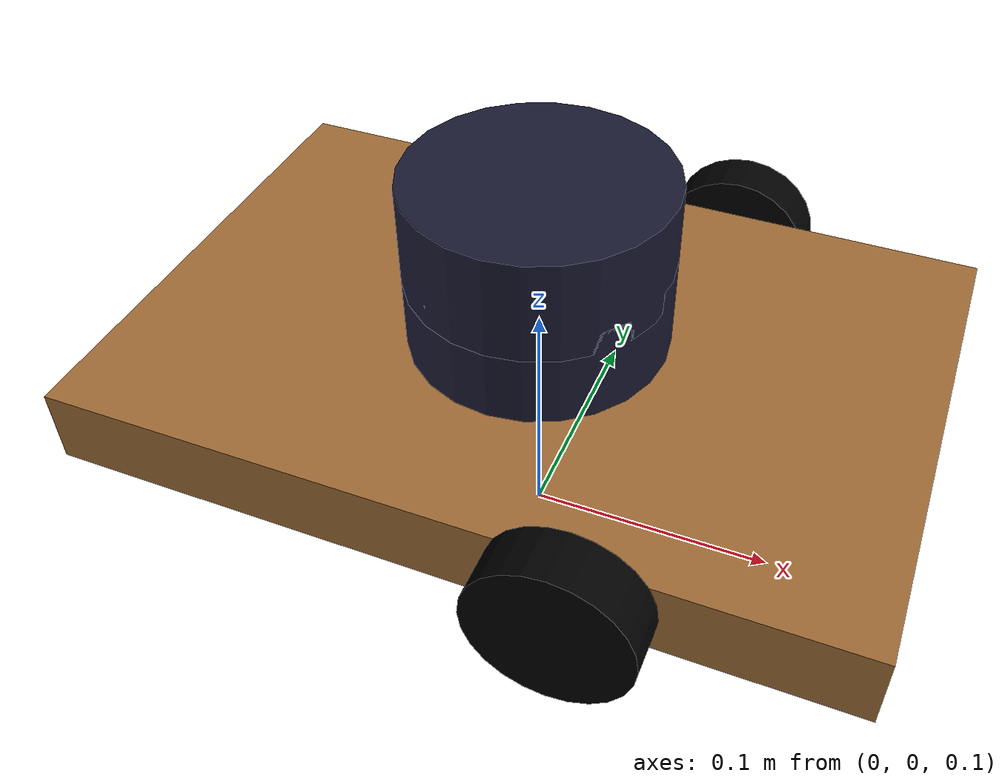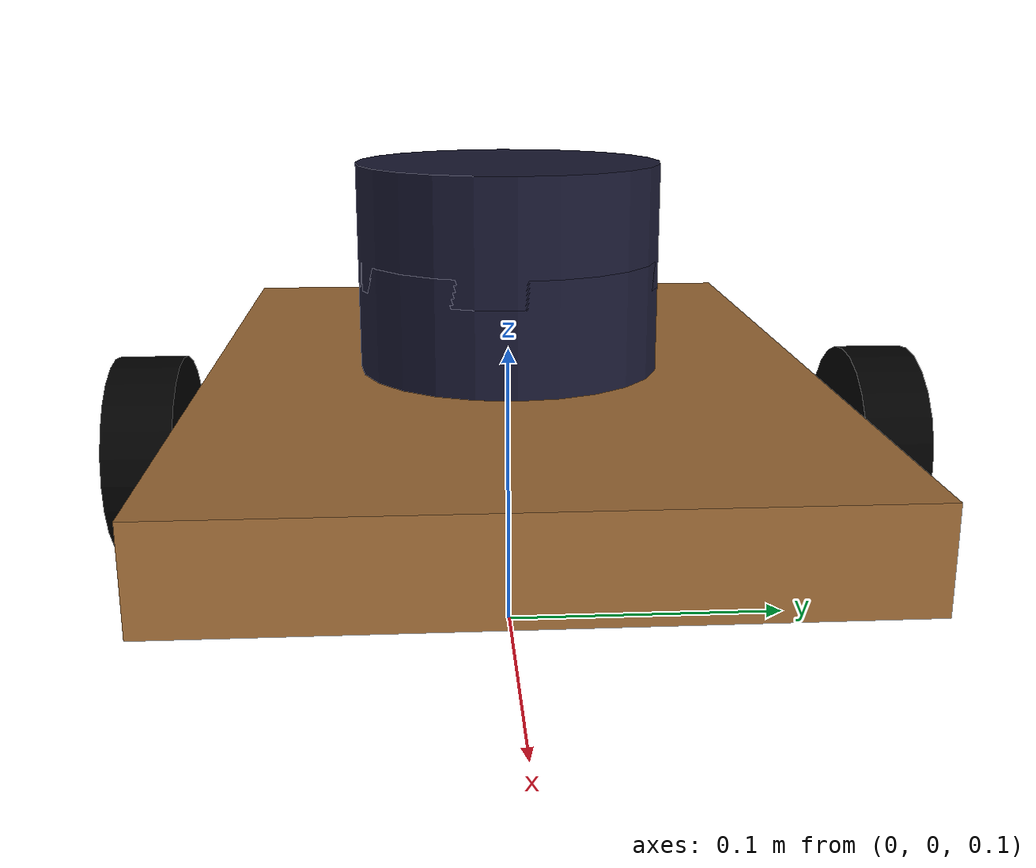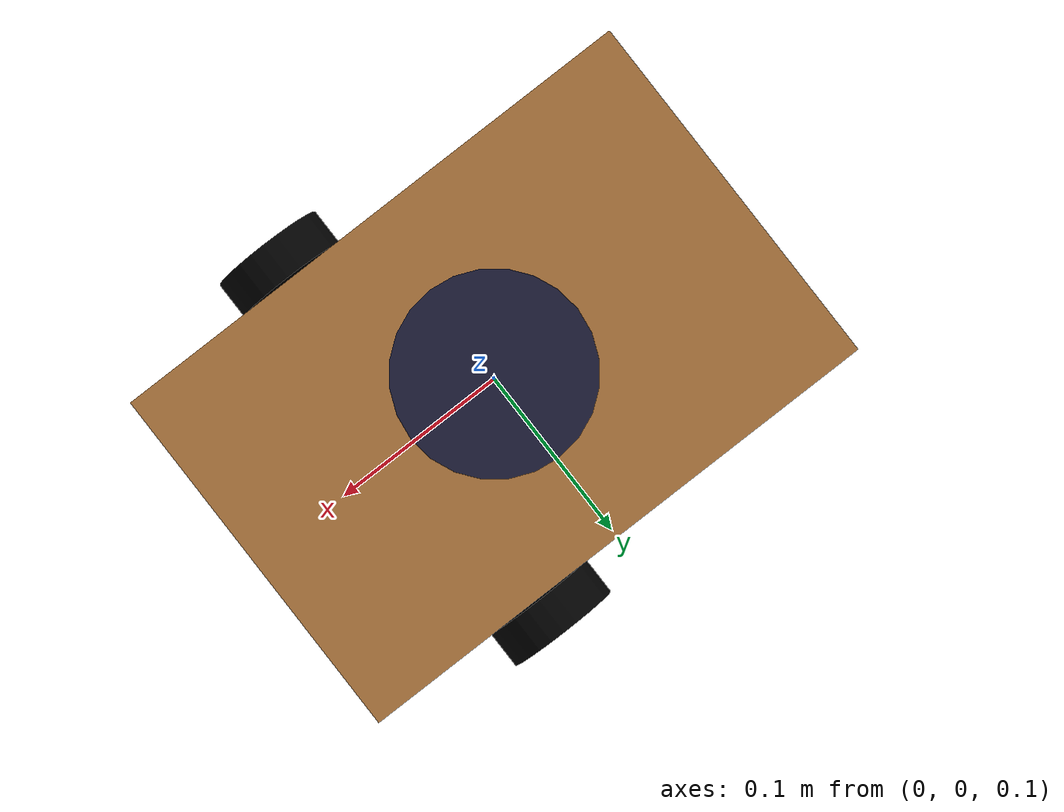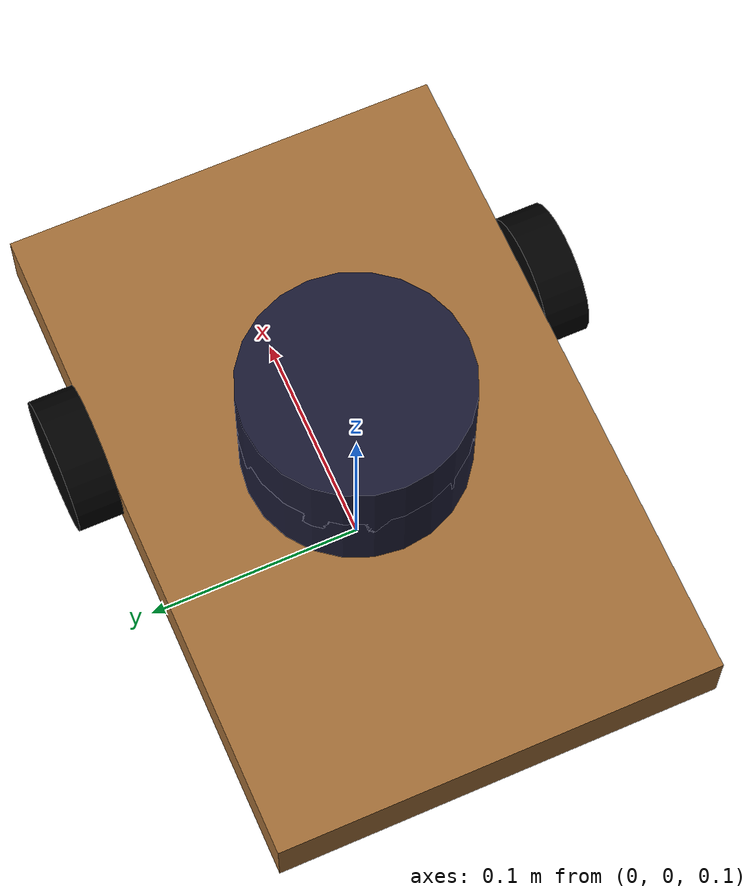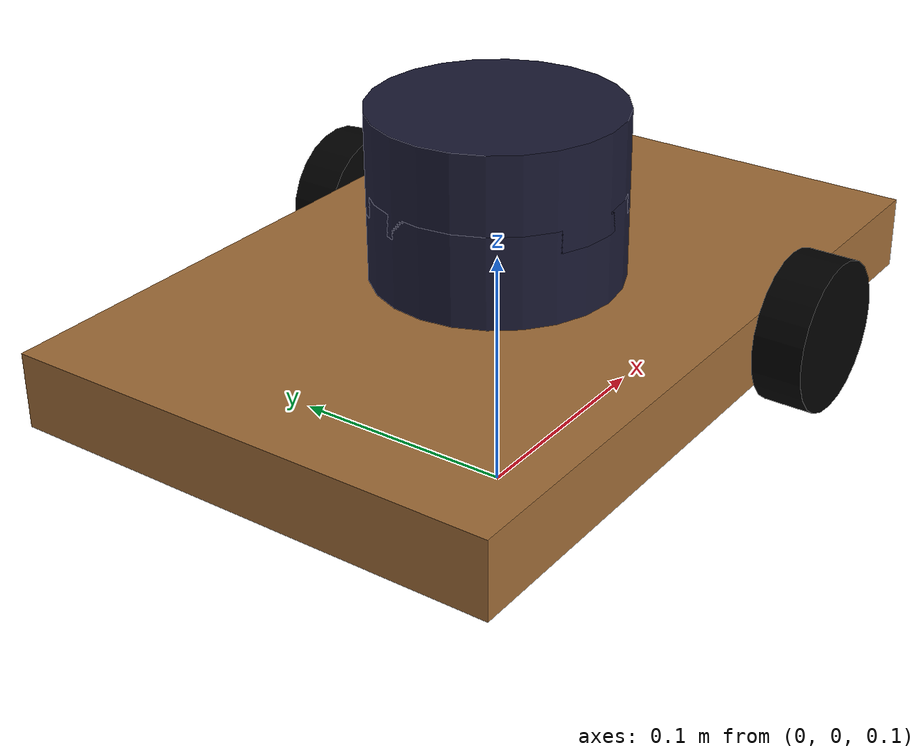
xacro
<?xml version="1.0"?>
<robot name="dd">

  <link name="base_footprint"/>

  <link name="base_link">
    <visual>
      <geometry>
        <box size="0.3 0.2 0.03"/>
      </geometry>
      <material name="avana brown">
	<color rgba="0.6314 0.4275 0.2157 1"/>
      </material>
    </visual>
    <collision>
      <geometry>
        <box size="0.3 0.2 0.03"/>
      </geometry>
    </collision>
    <inertial>
      <mass value="1.0"/>
      <inertia ixx="3.408e-3"
               ixy="0"       iyy="7.575e-3"
               ixz="0"       iyz="0"       izz="1.083e-2"/>
    </inertial>
  </link>

  <joint name="base_joint" type="fixed">
    <parent link="base_footprint"/>
    <child link="base_link" />
    <origin xyz="0 0 0.18" rpy="0 0 0"/>
  </joint>

  <link name="right_wheel">
    <visual>
      <geometry>
        <cylinder length="0.02" radius="0.03"/>
      </geometry>
      <material name="black">
	<color rgba="0 0 0 1"/>
      </material>
    </visual>
    <collision>
      <geometry>
        <cylinder length="0.02" radius="0.03"/>
      </geometry>
    </collision>
    <inertial>
      <mass value="0.1"/>
      <inertia ixx="2.583e-5"
               ixy="0"       iyy="2.583e-5"
               ixz="0"       iyz="0"       izz="7.5e-6"/>
    </inertial>
  </link>

  <joint name="right_wheel_joint" type="continuous">
    <axis xyz="0 0 1"/>
    <parent link="base_link"/>
    <child link="right_wheel"/>
    <origin rpy="-1.5708 0 0" xyz="0.05 -0.11 0"/>
  </joint>

  <link name="left_wheel">
    <visual>
      <geometry>
        <cylinder length="0.02" radius="0.03"/>
      </geometry>
      <material name="black">
	<color rgba="0 0 0 1"/>
      </material>
    </visual>
    <collision>
      <geometry>
        <cylinder length="0.02" radius="0.03"/>
      </geometry>
    </collision>
    <inertial>
      <mass value="0.1"/>
      <inertia ixx="2.583e-5"
               ixy="0"       iyy="2.583e-5"
               ixz="0"       iyz="0"       izz="7.5e-6"/>
    </inertial>
  </link>

  <joint name="left_wheel_joint" type="continuous">
    <axis xyz="0 0 1"/>
    <parent link="base_link"/>
    <child link="left_wheel"/>
    <origin rpy="-1.5708 0 0" xyz="0.05 0.11 0"/>
  </joint>

  <link name="caster_wheel">
    <visual>
      <geometry>
        <sphere radius="0.015"/>
      </geometry>
      <material name="black">
	<color rgba="0 0 0 1"/>
      </material>
    </visual>
    <collision>
      <geometry>
        <sphere radius="0.015"/>
      </geometry>
    </collision>
    <inertial>
      <mass value="0.1"/>
      <inertia ixx="9e-6"
               ixy="0"   iyy="9e-6"
               ixz="0"   iyz="0"   izz="9e-6"/>
    </inertial>
  </link>

  <joint name="caster_wheel_joint" type="fixed">
    <axis xyz="0 1 0"/>
    <parent link="base_link"/>
    <child link="caster_wheel"/>
    <origin rpy="0 0 0" xyz="-0.1 0 -0.015"/>
  </joint>

<gazebo>
  <plugin name="differential_drive_controller" filename="libgazebo_ros_diff_drive.so">
    <commandTopic>cmd_vel</commandTopic>
    <odometryTopic>odom</odometryTopic>
    <odometrySource>1</odometrySource>
    <leftJoint>left_wheel_joint</leftJoint>
    <rightJoint>right_wheel_joint</rightJoint>
    <robotBaseFrame>base_link</robotBaseFrame>
    <wheelSeparation>0.2</wheelSeparation>
    <wheelDiameter>0.06</wheelDiameter>
    <wheelTorque>10</wheelTorque>
    <publishWheelTF>true</publishWheelTF>
    <publishWheelJointState>true</publishWheelJointState>
  </plugin>
</gazebo>

<link name="imu_link">
  <visual>
    <geometry>
      <cylinder length="0.04" radius="0.05"/>
    </geometry>
    <material name="gray">
      <color rgba="0.1 0.1 0.2 1"/>
    </material>
  </visual>
  <collision>
    <geometry>
      <cylinder length="0.04" radius="0.05"/>
    </geometry>
  </collision>
  <inertial>
    <mass value="0.09"/>
    <inertia ixx="3.03e-4"
             ixy="0"       iyy="3.03e-4"
             ixz="0"       iyz="0"       izz="8.3e-5"/>
  </inertial>
</link>

<joint name="imu_joint" type="fixed">
  <axis xyz="0 0 0"/>
  <parent link="base_link"/>
  <child link="imu_link"/>
  <origin rpy="0 0 0" xyz="0 0 0.032"/>
</joint>

<gazebo reference="imu_link">
    <gravity>true</gravity>
    <sensor name="imu_sensor" type="imu">
      <always_on>true</always_on>
      <update_rate>100</update_rate>
      <visualize>true</visualize>
      <topic>__default_topic__</topic>
      <plugin filename="libgazebo_ros_imu_sensor.so" name="imu_plugin">
        <topicName>imu</topicName>
        <bodyName>imu_link</bodyName>
        <updateRateHZ>100.0</updateRateHZ>
        <gaussianNoise>0</gaussianNoise>
        <xyzOffset>0 0 0</xyzOffset>
        <rpyOffset>0 0 0</rpyOffset>
        <frameName>imu_link</frameName>
        <initialOrientationAsReference>false</initialOrientationAsReference>
      </plugin>
      <pose>0 0 0 0 0 0</pose>
    </sensor>
  </gazebo>

<link name="gps_link">
  <visual>
    <geometry>
      <cylinder length="0.04" radius="0.05"/>
    </geometry>
    <material name="gray">
      <color rgba="0.1 0.1 0.2 1"/>
    </material>
  </visual>
  <collision>
    <geometry>
      <cylinder length="0.04" radius="0.05"/>
    </geometry>
  </collision>
  <inertial>
    <mass value="0.09"/>
    <inertia ixx="3.03e-4"
             ixy="0"       iyy="3.03e-4"
             ixz="0"       iyz="0"       izz="8.3e-5"/>
  </inertial>
</link>

<joint name="gps_joint" type="fixed">
  <axis xyz="0 0 0"/>
  <parent link="base_link"/>
  <child link="gps_link"/>
  <origin rpy="0 0 0" xyz="0 0 0.063"/>
</joint>

<gazebo>
<plugin name="novatel_gps_sim" filename="libhector_gazebo_ros_gps.so">
<alwaysOn>1</alwaysOn>
<updateRate>10.0</updateRate>
<bodyName>base_footprint</bodyName>
<topicName>gps</topicName>
<gaussianNoise>0.001 0.001 0.001</gaussianNoise>
<velocityDrift>0 0 0</velocityDrift>
<velocityGaussianNoise>0.1 0.1 0.1</velocityGaussianNoise>
</plugin>
</gazebo>

</robot>
